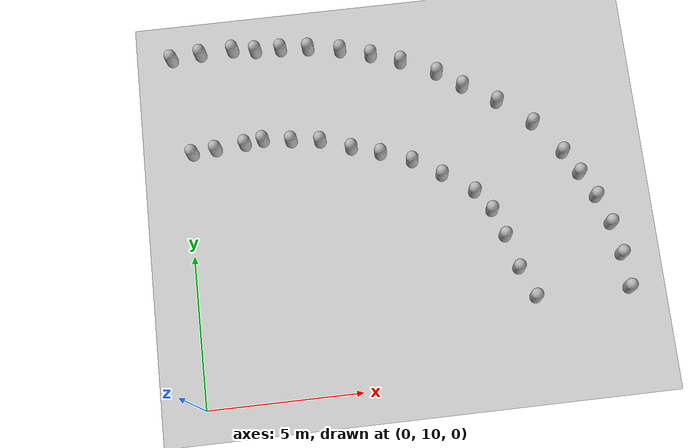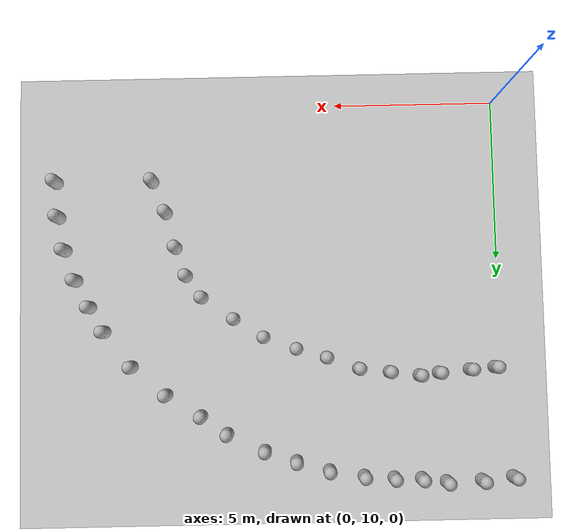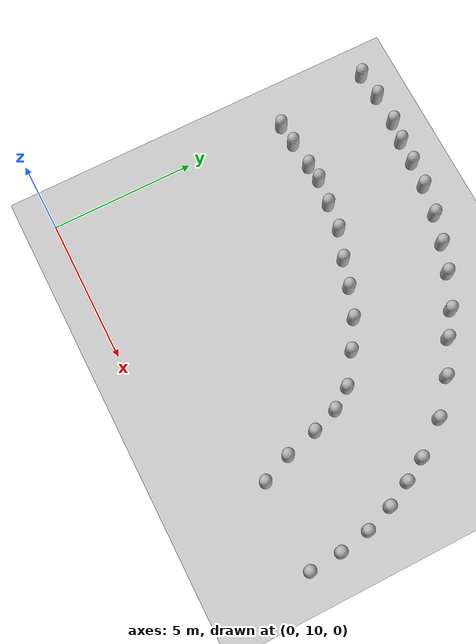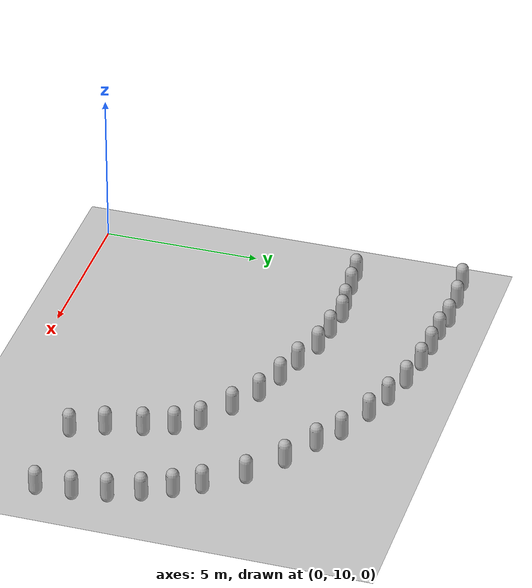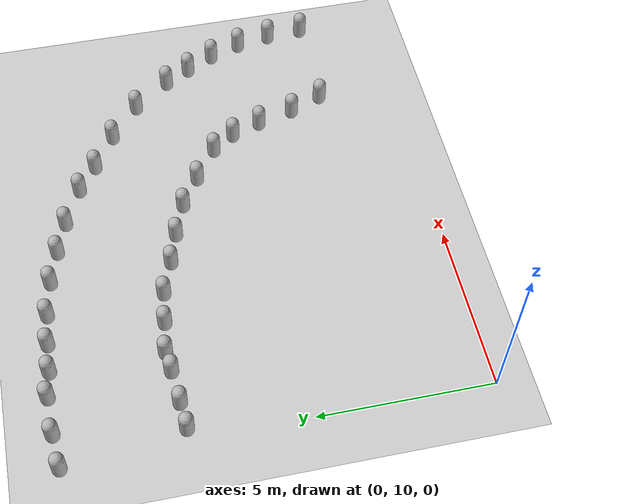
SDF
<sdf version="1.10">
 <world name="empty">
  <model name="ground_plane">
   <static>true</static>
   <link name="link">
    <collision name="collision">
     <geometry><plane><normal>0 0 1</normal><size>100 100</size></plane></geometry>
    </collision>
    <visual name="visual">
     <geometry><plane><normal>0 0 1</normal><size>100 100</size></plane></geometry>
     <material>
      <ambient>0.800000012 0.800000012 0.800000012 1</ambient>
      <diffuse>0.800000012 0.800000012 0.800000012 1</diffuse>
      <specular>0.800000012 0.800000012 0.800000012 1</specular>
     </material>
    </visual>
    <inertial>
     <mass>1</mass>
     <inertia><ixx>1</ixx><ixy>0</ixy><ixz>0</ixz><iyy>1</iyy><iyz>0</iyz><izz>1</izz></inertia>
    </inertial>
   </link>
  </model>
  <model name="capsule_29">
   <pose>10.802589999995105 12.388435753714917 0.499999999902001 0 0 0</pose>
   <link name="capsule_link">
    <inertial>
     <inertia>
      <ixx>0.074153999999999998</ixx>
      <ixy>0</ixy>
      <ixz>0</ixz>
      <iyy>0.074153999999999998</iyy>
      <iyz>0</iyz>
      <izz>0.018769000000000001</izz>
     </inertia>
     <mass>1</mass>
    </inertial>
    <collision name="capsule_collision">
     <geometry>
      <capsule><radius>0.20000000000000001</radius><length>0.59999999999999998</length></capsule>
     </geometry>
    </collision>
    <visual name="capsule_visual">
     <geometry>
      <capsule><radius>0.20000000000000001</radius><length>0.59999999999999998</length></capsule>
     </geometry>
     <material>
      <ambient>0.300000012 0.300000012 0.300000012 1</ambient>
      <diffuse>0.699999988 0.699999988 0.699999988 1</diffuse>
      <specular>1 1 1 1</specular>
     </material>
    </visual>
   </link>
   <static>false</static>
  </model>
  <model name="capsule_30">
   <pose>10.388104120117296 13.384558808134425 0.499999999902001 0 0 0</pose>
   <link name="capsule_link">
    <inertial>
     <inertia>
      <ixx>0.074153999999999998</ixx>
      <ixy>0</ixy>
      <ixz>0</ixz>
      <iyy>0.074153999999999998</iyy>
      <iyz>0</iyz>
      <izz>0.018769000000000001</izz>
     </inertia>
     <mass>1</mass>
    </inertial>
    <collision name="capsule_collision">
     <geometry>
      <capsule><radius>0.20000000000000001</radius><length>0.59999999999999998</length></capsule>
     </geometry>
    </collision>
    <visual name="capsule_visual">
     <geometry>
      <capsule><radius>0.20000000000000001</radius><length>0.59999999999999998</length></capsule>
     </geometry>
     <material>
      <ambient>0.300000012 0.300000012 0.300000012 1</ambient>
      <diffuse>0.699999988 0.699999988 0.699999988 1</diffuse>
      <specular>1 1 1 1</specular>
     </material>
    </visual>
   </link>
   <static>false</static>
  </model>
  <model name="capsule_31">
   <pose>10.093496640730823 14.490277114625172 0.499999999902001 0 0 0</pose>
   <link name="capsule_link">
    <inertial>
     <inertia>
      <ixx>0.074153999999999998</ixx>
      <ixy>0</ixy>
      <ixz>0</ixz>
      <iyy>0.074153999999999998</iyy>
      <iyz>0</iyz>
      <izz>0.018769000000000001</izz>
     </inertia>
     <mass>1</mass>
    </inertial>
    <collision name="capsule_collision">
     <geometry>
      <capsule><radius>0.20000000000000001</radius><length>0.59999999999999998</length></capsule>
     </geometry>
    </collision>
    <visual name="capsule_visual">
     <geometry>
      <capsule><radius>0.20000000000000001</radius><length>0.59999999999999998</length></capsule>
     </geometry>
     <material>
      <ambient>0.300000012 0.300000012 0.300000012 1</ambient>
      <diffuse>0.699999988 0.699999988 0.699999988 1</diffuse>
      <specular>1 1 1 1</specular>
     </material>
    </visual>
   </link>
   <static>false</static>
  </model>
  <model name="capsule_37">
   <pose>13.820094425232508 12.355737251079143 0.499999999902001 0 0 0</pose>
   <link name="capsule_link">
    <inertial>
     <inertia>
      <ixx>0.074153999999999998</ixx>
      <ixy>0</ixy>
      <ixz>0</ixz>
      <iyy>0.074153999999999998</iyy>
      <iyz>0</iyz>
      <izz>0.018769000000000001</izz>
     </inertia>
     <mass>1</mass>
    </inertial>
    <collision name="capsule_collision">
     <geometry>
      <capsule><radius>0.20000000000000001</radius><length>0.59999999999999998</length></capsule>
     </geometry>
    </collision>
    <visual name="capsule_visual">
     <geometry>
      <capsule><radius>0.20000000000000001</radius><length>0.59999999999999998</length></capsule>
     </geometry>
     <material>
      <ambient>0.300000012 0.300000012 0.300000012 1</ambient>
      <diffuse>0.699999988 0.699999988 0.699999988 1</diffuse>
      <specular>1 1 1 1</specular>
     </material>
    </visual>
   </link>
   <static>false</static>
  </model>
  <model name="capsule_38">
   <pose>13.74220852042223 13.461361231005446 0.499999999902001 0 0 0</pose>
   <link name="capsule_link">
    <inertial>
     <inertia>
      <ixx>0.074153999999999998</ixx>
      <ixy>0</ixy>
      <ixz>0</ixz>
      <iyy>0.074153999999999998</iyy>
      <iyz>0</iyz>
      <izz>0.018769000000000001</izz>
     </inertia>
     <mass>1</mass>
    </inertial>
    <collision name="capsule_collision">
     <geometry>
      <capsule><radius>0.20000000000000001</radius><length>0.59999999999999998</length></capsule>
     </geometry>
    </collision>
    <visual name="capsule_visual">
     <geometry>
      <capsule><radius>0.20000000000000001</radius><length>0.59999999999999998</length></capsule>
     </geometry>
     <material>
      <ambient>0.300000012 0.300000012 0.300000012 1</ambient>
      <diffuse>0.699999988 0.699999988 0.699999988 1</diffuse>
      <specular>1 1 1 1</specular>
     </material>
    </visual>
   </link>
   <static>false</static>
  </model>
  <model name="capsule_39">
   <pose>13.549509010915296 14.505898257879851 0.499999999902001 0 0 0</pose>
   <link name="capsule_link">
    <inertial>
     <inertia>
      <ixx>0.074153999999999998</ixx>
      <ixy>0</ixy>
      <ixz>0</ixz>
      <iyy>0.074153999999999998</iyy>
      <iyz>0</iyz>
      <izz>0.018769000000000001</izz>
     </inertia>
     <mass>1</mass>
    </inertial>
    <collision name="capsule_collision">
     <geometry>
      <capsule><radius>0.20000000000000001</radius><length>0.59999999999999998</length></capsule>
     </geometry>
    </collision>
    <visual name="capsule_visual">
     <geometry>
      <capsule><radius>0.20000000000000001</radius><length>0.59999999999999998</length></capsule>
     </geometry>
     <material>
      <ambient>0.300000012 0.300000012 0.300000012 1</ambient>
      <diffuse>0.699999988 0.699999988 0.699999988 1</diffuse>
      <specular>1 1 1 1</specular>
     </material>
    </visual>
   </link>
   <static>false</static>
  </model>
  <model name="capsule_40">
   <pose>13.21324914076267 15.4558752429447 0.499999999902001 0 0 0</pose>
   <link name="capsule_link">
    <inertial>
     <inertia>
      <ixx>0.074153999999999998</ixx>
      <ixy>0</ixy>
      <ixz>0</ixz>
      <iyy>0.074153999999999998</iyy>
      <iyz>0</iyz>
      <izz>0.018769000000000001</izz>
     </inertia>
     <mass>1</mass>
    </inertial>
    <collision name="capsule_collision">
     <geometry>
      <capsule><radius>0.20000000000000001</radius><length>0.59999999999999998</length></capsule>
     </geometry>
    </collision>
    <visual name="capsule_visual">
     <geometry>
      <capsule><radius>0.20000000000000001</radius><length>0.59999999999999998</length></capsule>
     </geometry>
     <material>
      <ambient>0.300000012 0.300000012 0.300000012 1</ambient>
      <diffuse>0.699999988 0.699999988 0.699999988 1</diffuse>
      <specular>1 1 1 1</specular>
     </material>
    </visual>
   </link>
   <static>false</static>
  </model>
  <model name="capsule_41">
   <pose>9.7776913043936258 15.379843440398783 0.499999999902001 0 0 0</pose>
   <link name="capsule_link">
    <inertial>
     <inertia>
      <ixx>0.074153999999999998</ixx>
      <ixy>0</ixy>
      <ixz>0</ixz>
      <iyy>0.074153999999999998</iyy>
      <iyz>0</iyz>
      <izz>0.018769000000000001</izz>
     </inertia>
     <mass>1</mass>
    </inertial>
    <collision name="capsule_collision">
     <geometry>
      <capsule><radius>0.20000000000000001</radius><length>0.59999999999999998</length></capsule>
     </geometry>
    </collision>
    <visual name="capsule_visual">
     <geometry>
      <capsule><radius>0.20000000000000001</radius><length>0.59999999999999998</length></capsule>
     </geometry>
     <material>
      <ambient>0.300000012 0.300000012 0.300000012 1</ambient>
      <diffuse>0.699999988 0.699999988 0.699999988 1</diffuse>
      <specular>1 1 1 1</specular>
     </material>
    </visual>
   </link>
   <static>false</static>
  </model>
  <model name="capsule_42">
   <pose>12.784792285438558 16.296812159273721 0.499999999902001 0 0 0</pose>
   <link name="capsule_link">
    <inertial>
     <inertia>
      <ixx>0.074153999999999998</ixx>
      <ixy>0</ixy>
      <ixz>0</ixz>
      <iyy>0.074153999999999998</iyy>
      <iyz>0</iyz>
      <izz>0.018769000000000001</izz>
     </inertia>
     <mass>1</mass>
    </inertial>
    <collision name="capsule_collision">
     <geometry>
      <capsule><radius>0.20000000000000001</radius><length>0.59999999999999998</length></capsule>
     </geometry>
    </collision>
    <visual name="capsule_visual">
     <geometry>
      <capsule><radius>0.20000000000000001</radius><length>0.59999999999999998</length></capsule>
     </geometry>
     <material>
      <ambient>0.300000012 0.300000012 0.300000012 1</ambient>
      <diffuse>0.699999988 0.699999988 0.699999988 1</diffuse>
      <specular>1 1 1 1</specular>
     </material>
    </visual>
   </link>
   <static>false</static>
  </model>
  <model name="capsule_43">
   <pose>9.2989644563569023 16.064995395899473 0.499999999902001 0 0 0</pose>
   <link name="capsule_link">
    <inertial>
     <inertia>
      <ixx>0.074153999999999998</ixx>
      <ixy>0</ixy>
      <ixz>0</ixz>
      <iyy>0.074153999999999998</iyy>
      <iyz>0</iyz>
      <izz>0.018769000000000001</izz>
     </inertia>
     <mass>1</mass>
    </inertial>
    <collision name="capsule_collision">
     <geometry>
      <capsule><radius>0.20000000000000001</radius><length>0.59999999999999998</length></capsule>
     </geometry>
    </collision>
    <visual name="capsule_visual">
     <geometry>
      <capsule><radius>0.20000000000000001</radius><length>0.59999999999999998</length></capsule>
     </geometry>
     <material>
      <ambient>0.300000012 0.300000012 0.300000012 1</ambient>
      <diffuse>0.699999988 0.699999988 0.699999988 1</diffuse>
      <specular>1 1 1 1</specular>
     </material>
    </visual>
   </link>
   <static>false</static>
  </model>
  <model name="capsule_44">
   <pose>12.34499347892584 17.068652976081371 0.499999999902001 0 0 0</pose>
   <link name="capsule_link">
    <inertial>
     <inertia>
      <ixx>0.074153999999999998</ixx>
      <ixy>0</ixy>
      <ixz>0</ixz>
      <iyy>0.074153999999999998</iyy>
      <iyz>0</iyz>
      <izz>0.018769000000000001</izz>
     </inertia>
     <mass>1</mass>
    </inertial>
    <collision name="capsule_collision">
     <geometry>
      <capsule><radius>0.20000000000000001</radius><length>0.59999999999999998</length></capsule>
     </geometry>
    </collision>
    <visual name="capsule_visual">
     <geometry>
      <capsule><radius>0.20000000000000001</radius><length>0.59999999999999998</length></capsule>
     </geometry>
     <material>
      <ambient>0.300000012 0.300000012 0.300000012 1</ambient>
      <diffuse>0.699999988 0.699999988 0.699999988 1</diffuse>
      <specular>1 1 1 1</specular>
     </material>
    </visual>
   </link>
   <static>false</static>
  </model>
  <model name="capsule_45">
   <pose>11.501570418364777 18.167714701257331 0.499999999902001 0 0 0</pose>
   <link name="capsule_link">
    <inertial>
     <inertia>
      <ixx>0.074153999999999998</ixx>
      <ixy>0</ixy>
      <ixz>0</ixz>
      <iyy>0.074153999999999998</iyy>
      <iyz>0</iyz>
      <izz>0.018769000000000001</izz>
     </inertia>
     <mass>1</mass>
    </inertial>
    <collision name="capsule_collision">
     <geometry>
      <capsule><radius>0.20000000000000001</radius><length>0.59999999999999998</length></capsule>
     </geometry>
    </collision>
    <visual name="capsule_visual">
     <geometry>
      <capsule><radius>0.20000000000000001</radius><length>0.59999999999999998</length></capsule>
     </geometry>
     <material>
      <ambient>0.300000012 0.300000012 0.300000012 1</ambient>
      <diffuse>0.699999988 0.699999988 0.699999988 1</diffuse>
      <specular>1 1 1 1</specular>
     </material>
    </visual>
   </link>
   <static>false</static>
  </model>
  <model name="capsule_46">
   <pose>10.432314559512298 19.049942355742274 0.499999999902001 0 0 0</pose>
   <link name="capsule_link">
    <inertial>
     <inertia>
      <ixx>0.074153999999999998</ixx>
      <ixy>0</ixy>
      <ixz>0</ixz>
      <iyy>0.074153999999999998</iyy>
      <iyz>0</iyz>
      <izz>0.018769000000000001</izz>
     </inertia>
     <mass>1</mass>
    </inertial>
    <collision name="capsule_collision">
     <geometry>
      <capsule><radius>0.20000000000000001</radius><length>0.59999999999999998</length></capsule>
     </geometry>
    </collision>
    <visual name="capsule_visual">
     <geometry>
      <capsule><radius>0.20000000000000001</radius><length>0.59999999999999998</length></capsule>
     </geometry>
     <material>
      <ambient>0.300000012 0.300000012 0.300000012 1</ambient>
      <diffuse>0.699999988 0.699999988 0.699999988 1</diffuse>
      <specular>1 1 1 1</specular>
     </material>
    </visual>
   </link>
   <static>false</static>
  </model>
  <model name="capsule_47">
   <pose>9.3603416734241609 19.716632957838673 0.499999999902001 0 0 0</pose>
   <link name="capsule_link">
    <inertial>
     <inertia>
      <ixx>0.074153999999999998</ixx>
      <ixy>0</ixy>
      <ixz>0</ixz>
      <iyy>0.074153999999999998</iyy>
      <iyz>0</iyz>
      <izz>0.018769000000000001</izz>
     </inertia>
     <mass>1</mass>
    </inertial>
    <collision name="capsule_collision">
     <geometry>
      <capsule><radius>0.20000000000000001</radius><length>0.59999999999999998</length></capsule>
     </geometry>
    </collision>
    <visual name="capsule_visual">
     <geometry>
      <capsule><radius>0.20000000000000001</radius><length>0.59999999999999998</length></capsule>
     </geometry>
     <material>
      <ambient>0.300000012 0.300000012 0.300000012 1</ambient>
      <diffuse>0.699999988 0.699999988 0.699999988 1</diffuse>
      <specular>1 1 1 1</specular>
     </material>
    </visual>
   </link>
   <static>false</static>
  </model>
  <model name="capsule_48">
   <pose>8.3119590767318954 16.752738715855134 0.499999999902001 0 0 0</pose>
   <link name="capsule_link">
    <inertial>
     <inertia>
      <ixx>0.074153999999999998</ixx>
      <ixy>0</ixy>
      <ixz>0</ixz>
      <iyy>0.074153999999999998</iyy>
      <iyz>0</iyz>
      <izz>0.018769000000000001</izz>
     </inertia>
     <mass>1</mass>
    </inertial>
    <collision name="capsule_collision">
     <geometry>
      <capsule><radius>0.20000000000000001</radius><length>0.59999999999999998</length></capsule>
     </geometry>
    </collision>
    <visual name="capsule_visual">
     <geometry>
      <capsule><radius>0.20000000000000001</radius><length>0.59999999999999998</length></capsule>
     </geometry>
     <material>
      <ambient>0.300000012 0.300000012 0.300000012 1</ambient>
      <diffuse>0.699999988 0.699999988 0.699999988 1</diffuse>
      <specular>1 1 1 1</specular>
     </material>
    </visual>
   </link>
   <static>false</static>
  </model>
  <model name="capsule_49">
   <pose>7.3937833344189841 17.329572528813518 0.499999999902001 0 0 0</pose>
   <link name="capsule_link">
    <inertial>
     <inertia>
      <ixx>0.074153999999999998</ixx>
      <ixy>0</ixy>
      <ixz>0</ixz>
      <iyy>0.074153999999999998</iyy>
      <iyz>0</iyz>
      <izz>0.018769000000000001</izz>
     </inertia>
     <mass>1</mass>
    </inertial>
    <collision name="capsule_collision">
     <geometry>
      <capsule><radius>0.20000000000000001</radius><length>0.59999999999999998</length></capsule>
     </geometry>
    </collision>
    <visual name="capsule_visual">
     <geometry>
      <capsule><radius>0.20000000000000001</radius><length>0.59999999999999998</length></capsule>
     </geometry>
     <material>
      <ambient>0.300000012 0.300000012 0.300000012 1</ambient>
      <diffuse>0.699999988 0.699999988 0.699999988 1</diffuse>
      <specular>1 1 1 1</specular>
     </material>
    </visual>
   </link>
   <static>false</static>
  </model>
  <model name="capsule_50">
   <pose>8.5643422242011695 20.277324070466886 0.499999999902001 0 0 0</pose>
   <link name="capsule_link">
    <inertial>
     <inertia>
      <ixx>0.074153999999999998</ixx>
      <ixy>0</ixy>
      <ixz>0</ixz>
      <iyy>0.074153999999999998</iyy>
      <iyz>0</iyz>
      <izz>0.018769000000000001</izz>
     </inertia>
     <mass>1</mass>
    </inertial>
    <collision name="capsule_collision">
     <geometry>
      <capsule><radius>0.20000000000000001</radius><length>0.59999999999999998</length></capsule>
     </geometry>
    </collision>
    <visual name="capsule_visual">
     <geometry>
      <capsule><radius>0.20000000000000001</radius><length>0.59999999999999998</length></capsule>
     </geometry>
     <material>
      <ambient>0.300000012 0.300000012 0.300000012 1</ambient>
      <diffuse>0.699999988 0.699999988 0.699999988 1</diffuse>
      <specular>1 1 1 1</specular>
     </material>
    </visual>
   </link>
   <static>false</static>
  </model>
  <model name="capsule_51">
   <pose>7.4140577027586598 20.813549441494722 0.499999999902001 0 0 0</pose>
   <link name="capsule_link">
    <inertial>
     <inertia>
      <ixx>0.074153999999999998</ixx>
      <ixy>0</ixy>
      <ixz>0</ixz>
      <iyy>0.074153999999999998</iyy>
      <iyz>0</iyz>
      <izz>0.018769000000000001</izz>
     </inertia>
     <mass>1</mass>
    </inertial>
    <collision name="capsule_collision">
     <geometry>
      <capsule><radius>0.20000000000000001</radius><length>0.59999999999999998</length></capsule>
     </geometry>
    </collision>
    <visual name="capsule_visual">
     <geometry>
      <capsule><radius>0.20000000000000001</radius><length>0.59999999999999998</length></capsule>
     </geometry>
     <material>
      <ambient>0.300000012 0.300000012 0.300000012 1</ambient>
      <diffuse>0.699999988 0.699999988 0.699999988 1</diffuse>
      <specular>1 1 1 1</specular>
     </material>
    </visual>
   </link>
   <static>false</static>
  </model>
  <model name="capsule_52">
   <pose>6.3911591009967257 17.705238126367711 0.499999999902001 0 0 0</pose>
   <link name="capsule_link">
    <inertial>
     <inertia>
      <ixx>0.074153999999999998</ixx>
      <ixy>0</ixy>
      <ixz>0</ixz>
      <iyy>0.074153999999999998</iyy>
      <iyz>0</iyz>
      <izz>0.018769000000000001</izz>
     </inertia>
     <mass>1</mass>
    </inertial>
    <collision name="capsule_collision">
     <geometry>
      <capsule><radius>0.20000000000000001</radius><length>0.59999999999999998</length></capsule>
     </geometry>
    </collision>
    <visual name="capsule_visual">
     <geometry>
      <capsule><radius>0.20000000000000001</radius><length>0.59999999999999998</length></capsule>
     </geometry>
     <material>
      <ambient>0.300000012 0.300000012 0.300000012 1</ambient>
      <diffuse>0.699999988 0.699999988 0.699999988 1</diffuse>
      <specular>1 1 1 1</specular>
     </material>
    </visual>
   </link>
   <static>false</static>
  </model>
  <model name="capsule_53">
   <pose>6.446894345369806 21.151255796793222 0.499999999902001 0 0 0</pose>
   <link name="capsule_link">
    <inertial>
     <inertia>
      <ixx>0.074153999999999998</ixx>
      <ixy>0</ixy>
      <ixz>0</ixz>
      <iyy>0.074153999999999998</iyy>
      <iyz>0</iyz>
      <izz>0.018769000000000001</izz>
     </inertia>
     <mass>1</mass>
    </inertial>
    <collision name="capsule_collision">
     <geometry>
      <capsule><radius>0.20000000000000001</radius><length>0.59999999999999998</length></capsule>
     </geometry>
    </collision>
    <visual name="capsule_visual">
     <geometry>
      <capsule><radius>0.20000000000000001</radius><length>0.59999999999999998</length></capsule>
     </geometry>
     <material>
      <ambient>0.300000012 0.300000012 0.300000012 1</ambient>
      <diffuse>0.699999988 0.699999988 0.699999988 1</diffuse>
      <specular>1 1 1 1</specular>
     </material>
    </visual>
   </link>
   <static>false</static>
  </model>
  <model name="capsule_54">
   <pose>5.4580310636534 17.990606380961392 0.499999999902001 0 0 0</pose>
   <link name="capsule_link">
    <inertial>
     <inertia>
      <ixx>0.074153999999999998</ixx>
      <ixy>0</ixy>
      <ixz>0</ixz>
      <iyy>0.074153999999999998</iyy>
      <iyz>0</iyz>
      <izz>0.018769000000000001</izz>
     </inertia>
     <mass>1</mass>
    </inertial>
    <collision name="capsule_collision">
     <geometry>
      <capsule><radius>0.20000000000000001</radius><length>0.59999999999999998</length></capsule>
     </geometry>
    </collision>
    <visual name="capsule_visual">
     <geometry>
      <capsule><radius>0.20000000000000001</radius><length>0.59999999999999998</length></capsule>
     </geometry>
     <material>
      <ambient>0.300000012 0.300000012 0.300000012 1</ambient>
      <diffuse>0.699999988 0.699999988 0.699999988 1</diffuse>
      <specular>1 1 1 1</specular>
     </material>
    </visual>
   </link>
   <static>false</static>
  </model>
  <model name="capsule_55">
   <pose>5.4432921736451325 21.447763844466149 0.499999999902001 0 0 0</pose>
   <link name="capsule_link">
    <inertial>
     <inertia>
      <ixx>0.074153999999999998</ixx>
      <ixy>0</ixy>
      <ixz>0</ixz>
      <iyy>0.074153999999999998</iyy>
      <iyz>0</iyz>
      <izz>0.018769000000000001</izz>
     </inertia>
     <mass>1</mass>
    </inertial>
    <collision name="capsule_collision">
     <geometry>
      <capsule><radius>0.20000000000000001</radius><length>0.59999999999999998</length></capsule>
     </geometry>
    </collision>
    <visual name="capsule_visual">
     <geometry>
      <capsule><radius>0.20000000000000001</radius><length>0.59999999999999998</length></capsule>
     </geometry>
     <material>
      <ambient>0.300000012 0.300000012 0.300000012 1</ambient>
      <diffuse>0.699999988 0.699999988 0.699999988 1</diffuse>
      <specular>1 1 1 1</specular>
     </material>
    </visual>
   </link>
   <static>false</static>
  </model>
  <model name="capsule_56">
   <pose>4.4627769113870563 18.351146209910112 0.499999999902001 0 0 0</pose>
   <link name="capsule_link">
    <inertial>
     <inertia>
      <ixx>0.074153999999999998</ixx>
      <ixy>0</ixy>
      <ixz>0</ixz>
      <iyy>0.074153999999999998</iyy>
      <iyz>0</iyz>
      <izz>0.018769000000000001</izz>
     </inertia>
     <mass>1</mass>
    </inertial>
    <collision name="capsule_collision">
     <geometry>
      <capsule><radius>0.20000000000000001</radius><length>0.59999999999999998</length></capsule>
     </geometry>
    </collision>
    <visual name="capsule_visual">
     <geometry>
      <capsule><radius>0.20000000000000001</radius><length>0.59999999999999998</length></capsule>
     </geometry>
     <material>
      <ambient>0.300000012 0.300000012 0.300000012 1</ambient>
      <diffuse>0.699999988 0.699999988 0.699999988 1</diffuse>
      <specular>1 1 1 1</specular>
     </material>
    </visual>
   </link>
   <static>false</static>
  </model>
  <model name="capsule_57">
   <pose>4.3811860306313983 21.634917531345046 0.499999999902001 0 0 0</pose>
   <link name="capsule_link">
    <inertial>
     <inertia>
      <ixx>0.074153999999999998</ixx>
      <ixy>0</ixy>
      <ixz>0</ixz>
      <iyy>0.074153999999999998</iyy>
      <iyz>0</iyz>
      <izz>0.018769000000000001</izz>
     </inertia>
     <mass>1</mass>
    </inertial>
    <collision name="capsule_collision">
     <geometry>
      <capsule><radius>0.20000000000000001</radius><length>0.59999999999999998</length></capsule>
     </geometry>
    </collision>
    <visual name="capsule_visual">
     <geometry>
      <capsule><radius>0.20000000000000001</radius><length>0.59999999999999998</length></capsule>
     </geometry>
     <material>
      <ambient>0.300000012 0.300000012 0.300000012 1</ambient>
      <diffuse>0.699999988 0.699999988 0.699999988 1</diffuse>
      <specular>1 1 1 1</specular>
     </material>
    </visual>
   </link>
   <static>false</static>
  </model>
  <model name="capsule_58">
   <pose>3.5143000184609443 18.470610855602125 0.499999999902001 0 0 0</pose>
   <link name="capsule_link">
    <inertial>
     <inertia>
      <ixx>0.074153999999999998</ixx>
      <ixy>0</ixy>
      <ixz>0</ixz>
      <iyy>0.074153999999999998</iyy>
      <iyz>0</iyz>
      <izz>0.018769000000000001</izz>
     </inertia>
     <mass>1</mass>
    </inertial>
    <collision name="capsule_collision">
     <geometry>
      <capsule><radius>0.20000000000000001</radius><length>0.59999999999999998</length></capsule>
     </geometry>
    </collision>
    <visual name="capsule_visual">
     <geometry>
      <capsule><radius>0.20000000000000001</radius><length>0.59999999999999998</length></capsule>
     </geometry>
     <material>
      <ambient>0.300000012 0.300000012 0.300000012 1</ambient>
      <diffuse>0.699999988 0.699999988 0.699999988 1</diffuse>
      <specular>1 1 1 1</specular>
     </material>
    </visual>
   </link>
   <static>false</static>
  </model>
  <model name="capsule_59">
   <pose>3.4613235358185594 21.709960455476821 0.499999999902001 0 0 0</pose>
   <link name="capsule_link">
    <inertial>
     <inertia>
      <ixx>0.074153999999999998</ixx>
      <ixy>0</ixy>
      <ixz>0</ixz>
      <iyy>0.074153999999999998</iyy>
      <iyz>0</iyz>
      <izz>0.018769000000000001</izz>
     </inertia>
     <mass>1</mass>
    </inertial>
    <collision name="capsule_collision">
     <geometry>
      <capsule><radius>0.20000000000000001</radius><length>0.59999999999999998</length></capsule>
     </geometry>
    </collision>
    <visual name="capsule_visual">
     <geometry>
      <capsule><radius>0.20000000000000001</radius><length>0.59999999999999998</length></capsule>
     </geometry>
     <material>
      <ambient>0.300000012 0.300000012 0.300000012 1</ambient>
      <diffuse>0.699999988 0.699999988 0.699999988 1</diffuse>
      <specular>1 1 1 1</specular>
     </material>
    </visual>
   </link>
   <static>false</static>
  </model>
  <model name="capsule_60">
   <pose>2.5905345308872576 18.592702291449431 0.499999999902001 0 0 0</pose>
   <link name="capsule_link">
    <inertial>
     <inertia>
      <ixx>0.074153999999999998</ixx>
      <ixy>0</ixy>
      <ixz>0</ixz>
      <iyy>0.074153999999999998</iyy>
      <iyz>0</iyz>
      <izz>0.018769000000000001</izz>
     </inertia>
     <mass>1</mass>
    </inertial>
    <collision name="capsule_collision">
     <geometry>
      <capsule><radius>0.20000000000000001</radius><length>0.59999999999999998</length></capsule>
     </geometry>
    </collision>
    <visual name="capsule_visual">
     <geometry>
      <capsule><radius>0.20000000000000001</radius><length>0.59999999999999998</length></capsule>
     </geometry>
     <material>
      <ambient>0.300000012 0.300000012 0.300000012 1</ambient>
      <diffuse>0.699999988 0.699999988 0.699999988 1</diffuse>
      <specular>1 1 1 1</specular>
     </material>
    </visual>
   </link>
   <static>false</static>
  </model>
  <model name="capsule_61">
   <pose>2.6164210774177228 21.742508112568419 0.499999999902001 0 0 0</pose>
   <link name="capsule_link">
    <inertial>
     <inertia>
      <ixx>0.074153999999999998</ixx>
      <ixy>0</ixy>
      <ixz>0</ixz>
      <iyy>0.074153999999999998</iyy>
      <iyz>0</iyz>
      <izz>0.018769000000000001</izz>
     </inertia>
     <mass>1</mass>
    </inertial>
    <collision name="capsule_collision">
     <geometry>
      <capsule><radius>0.20000000000000001</radius><length>0.59999999999999998</length></capsule>
     </geometry>
    </collision>
    <visual name="capsule_visual">
     <geometry>
      <capsule><radius>0.20000000000000001</radius><length>0.59999999999999998</length></capsule>
     </geometry>
     <material>
      <ambient>0.300000012 0.300000012 0.300000012 1</ambient>
      <diffuse>0.699999988 0.699999988 0.699999988 1</diffuse>
      <specular>1 1 1 1</specular>
     </material>
    </visual>
   </link>
   <static>false</static>
  </model>
  <model name="capsule_62">
   <pose>1.8591186582091996 21.853872259130544 0.499999999902001 0 0 0</pose>
   <link name="capsule_link">
    <inertial>
     <inertia>
      <ixx>0.074153999999999998</ixx>
      <ixy>0</ixy>
      <ixz>0</ixz>
      <iyy>0.074153999999999998</iyy>
      <iyz>0</iyz>
      <izz>0.018769000000000001</izz>
     </inertia>
     <mass>1</mass>
    </inertial>
    <collision name="capsule_collision">
     <geometry>
      <capsule><radius>0.20000000000000001</radius><length>0.59999999999999998</length></capsule>
     </geometry>
    </collision>
    <visual name="capsule_visual">
     <geometry>
      <capsule><radius>0.20000000000000001</radius><length>0.59999999999999998</length></capsule>
     </geometry>
     <material>
      <ambient>0.300000012 0.300000012 0.300000012 1</ambient>
      <diffuse>0.699999988 0.699999988 0.699999988 1</diffuse>
      <specular>1 1 1 1</specular>
     </material>
    </visual>
   </link>
   <static>false</static>
  </model>
  <model name="capsule_63">
   <pose>1.991677504528119 18.523516630677371 0.499999999902001 0 0 0</pose>
   <link name="capsule_link">
    <inertial>
     <inertia>
      <ixx>0.074153999999999998</ixx>
      <ixy>0</ixy>
      <ixz>0</ixz>
      <iyy>0.074153999999999998</iyy>
      <iyz>0</iyz>
      <izz>0.018769000000000001</izz>
     </inertia>
     <mass>1</mass>
    </inertial>
    <collision name="capsule_collision">
     <geometry>
      <capsule><radius>0.20000000000000001</radius><length>0.59999999999999998</length></capsule>
     </geometry>
    </collision>
    <visual name="capsule_visual">
     <geometry>
      <capsule><radius>0.20000000000000001</radius><length>0.59999999999999998</length></capsule>
     </geometry>
     <material>
      <ambient>0.300000012 0.300000012 0.300000012 1</ambient>
      <diffuse>0.699999988 0.699999988 0.699999988 1</diffuse>
      <specular>1 1 1 1</specular>
     </material>
    </visual>
   </link>
   <static>false</static>
  </model>
  <model name="capsule_64">
   <pose>0.77166891387936509 21.830360383424146 0.499999999902001 0 0 0</pose>
   <link name="capsule_link">
    <inertial>
     <inertia>
      <ixx>0.074153999999999998</ixx>
      <ixy>0</ixy>
      <ixz>0</ixz>
      <iyy>0.074153999999999998</iyy>
      <iyz>0</iyz>
      <izz>0.018769000000000001</izz>
     </inertia>
     <mass>1</mass>
    </inertial>
    <collision name="capsule_collision">
     <geometry>
      <capsule><radius>0.20000000000000001</radius><length>0.59999999999999998</length></capsule>
     </geometry>
    </collision>
    <visual name="capsule_visual">
     <geometry>
      <capsule><radius>0.20000000000000001</radius><length>0.59999999999999998</length></capsule>
     </geometry>
     <material>
      <ambient>0.300000012 0.300000012 0.300000012 1</ambient>
      <diffuse>0.699999988 0.699999988 0.699999988 1</diffuse>
      <specular>1 1 1 1</specular>
     </material>
    </visual>
   </link>
   <static>false</static>
  </model>
  <model name="capsule_65">
   <pose>1.0235158462605778 18.443851802678399 0.499999999902001 0 0 0</pose>
   <link name="capsule_link">
    <inertial>
     <inertia>
      <ixx>0.074153999999999998</ixx>
      <ixy>0</ixy>
      <ixz>0</ixz>
      <iyy>0.074153999999999998</iyy>
      <iyz>0</iyz>
      <izz>0.018769000000000001</izz>
     </inertia>
     <mass>1</mass>
    </inertial>
    <collision name="capsule_collision">
     <geometry>
      <capsule><radius>0.20000000000000001</radius><length>0.59999999999999998</length></capsule>
     </geometry>
    </collision>
    <visual name="capsule_visual">
     <geometry>
      <capsule><radius>0.20000000000000001</radius><length>0.59999999999999998</length></capsule>
     </geometry>
     <material>
      <ambient>0.300000012 0.300000012 0.300000012 1</ambient>
      <diffuse>0.699999988 0.699999988 0.699999988 1</diffuse>
      <specular>1 1 1 1</specular>
     </material>
    </visual>
   </link>
   <static>false</static>
  </model>
  <model name="capsule_66">
   <pose>-0.19449375237520528 21.744830503012533 0.499999999902001 0 0 0</pose>
   <link name="capsule_link">
    <inertial>
     <inertia>
      <ixx>0.074153999999999998</ixx>
      <ixy>0</ixy>
      <ixz>0</ixz>
      <iyy>0.074153999999999998</iyy>
      <iyz>0</iyz>
      <izz>0.018769000000000001</izz>
     </inertia>
     <mass>1</mass>
    </inertial>
    <collision name="capsule_collision">
     <geometry>
      <capsule><radius>0.20000000000000001</radius><length>0.59999999999999998</length></capsule>
     </geometry>
    </collision>
    <visual name="capsule_visual">
     <geometry>
      <capsule><radius>0.20000000000000001</radius><length>0.59999999999999998</length></capsule>
     </geometry>
     <material>
      <ambient>0.300000012 0.300000012 0.300000012 1</ambient>
      <diffuse>0.699999988 0.699999988 0.699999988 1</diffuse>
      <specular>1 1 1 1</specular>
     </material>
    </visual>
   </link>
   <static>false</static>
  </model>
  <model name="capsule_67">
   <pose>0.25618383411543455 18.385015773330636 0.499999999902001 0 0 0</pose>
   <link name="capsule_link">
    <inertial>
     <inertia>
      <ixx>0.074153999999999998</ixx>
      <ixy>0</ixy>
      <ixz>0</ixz>
      <iyy>0.074153999999999998</iyy>
      <iyz>0</iyz>
      <izz>0.018769000000000001</izz>
     </inertia>
     <mass>1</mass>
    </inertial>
    <collision name="capsule_collision">
     <geometry>
      <capsule><radius>0.20000000000000001</radius><length>0.59999999999999998</length></capsule>
     </geometry>
    </collision>
    <visual name="capsule_visual">
     <geometry>
      <capsule><radius>0.20000000000000001</radius><length>0.59999999999999998</length></capsule>
     </geometry>
     <material>
      <ambient>0.300000012 0.300000012 0.300000012 1</ambient>
      <diffuse>0.699999988 0.699999988 0.699999988 1</diffuse>
      <specular>1 1 1 1</specular>
     </material>
    </visual>
   </link>
   <static>false</static>
  </model>
 </world>
</sdf>
